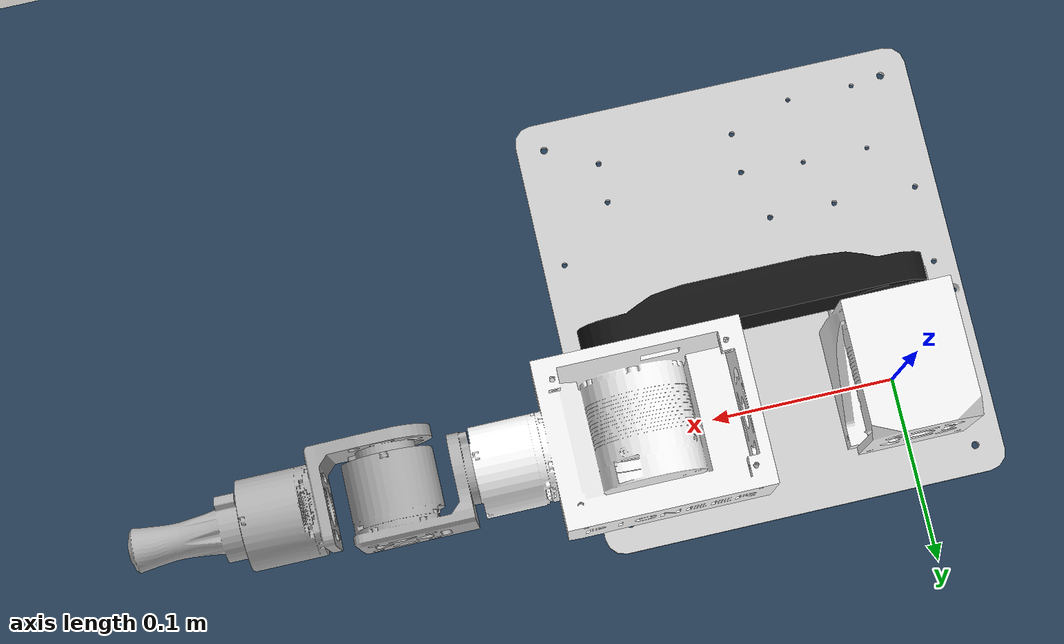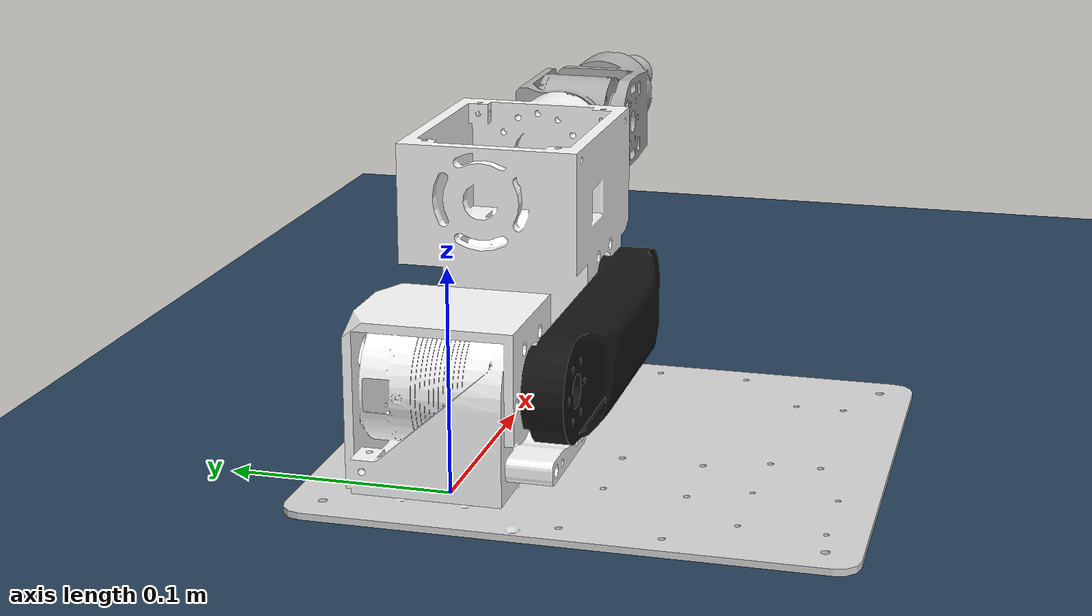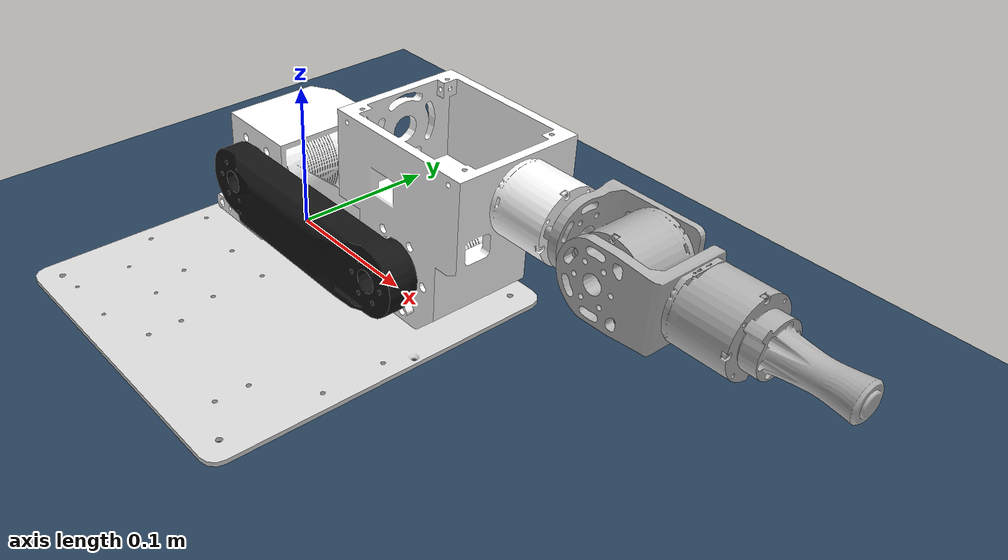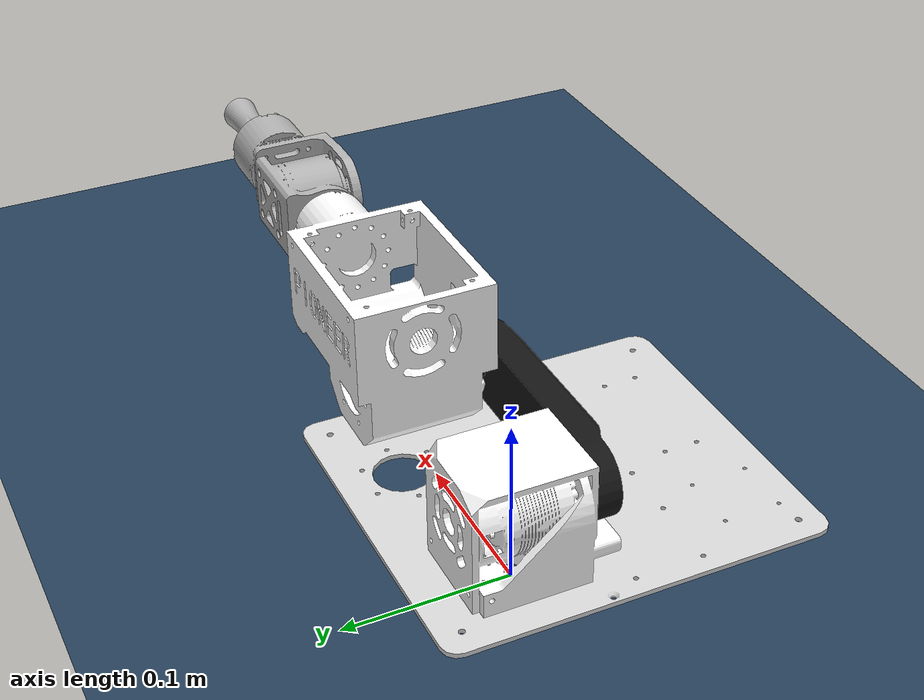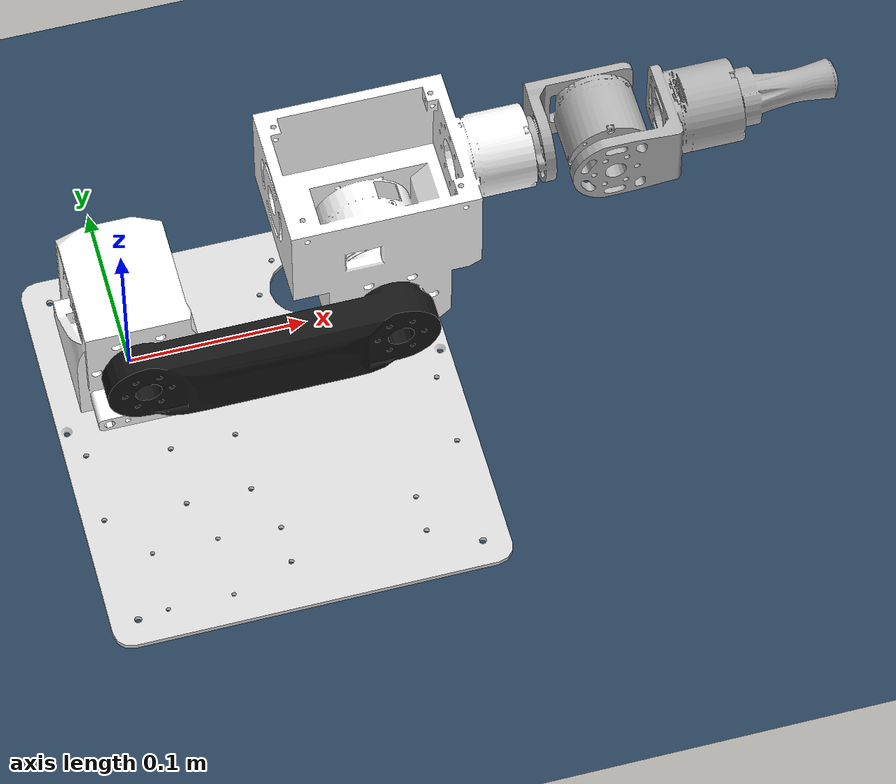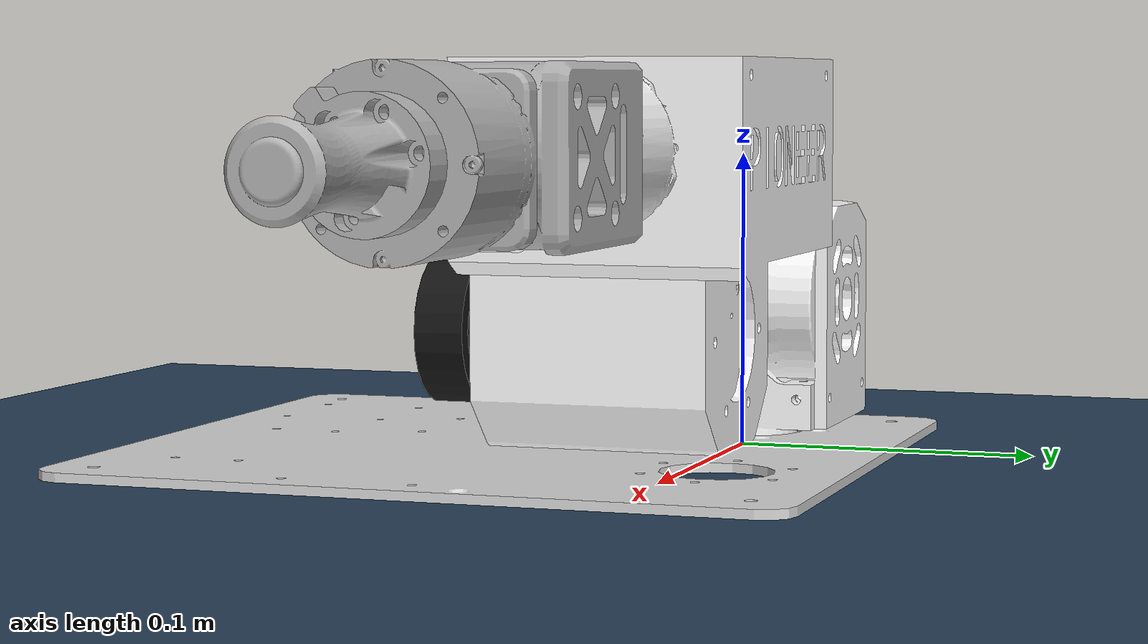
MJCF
<mujoco model="Caster3 scene">
  <include file="caster3.xml"/>

  <statistic center="0.15 0 0.3" extent="0.8"/>

  <visual>
    <headlight diffuse="0.6 0.6 0.6" ambient="0.3 0.3 0.3" specular="0 0 0"/>
    <rgba haze="0.15 0.25 0.35 1"/>
    <global azimuth="120" elevation="-20"/>
  </visual>

  <asset>
    <texture type="skybox" builtin="gradient" rgb1="0.3 0.5 0.7" rgb2="0 0 0" width="512" height="3072"/>
    <texture type="2d" name="groundplane" builtin="checker" mark="edge" rgb1="0.2 0.3 0.4" rgb2="0.1 0.2 0.3"
      markrgb="0.8 0.8 0.8" width="300" height="300"/>
    <material name="groundplane" texture="groundplane" texuniform="true" texrepeat="5 5" reflectance="0.2"/>
  </asset>

  <worldbody>
    <light pos="0 0 1.5" dir="0 0 -1" directional="true"/>
    <geom name="floor" size="0 0 0.05" type="plane" material="groundplane"/>
  </worldbody>
</mujoco>

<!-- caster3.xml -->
<mujoco model="caster3">
  <compiler angle="radian" autolimits="true"/>
  <option integrator="implicitfast" timestep="0.001"/>
  <default>
    <default class="caster3">
      <material specular="0.5" shininess="0.25"/>
      <joint armature="0.1" damping="1" axis="0 0 1"/>
      <default class="visual">
        <geom type="mesh" contype="0" conaffinity="0" group="2"/>
      </default>
      <default class="collision">
        <geom type="mesh" group="3"/>
      </default>
    </default>
  </default>
  <asset>
    <!-- 材质定义 -->
    <material class="caster3" name="gray_light" rgba="0.84706 0.84706 0.84706 1"/>
    <material class="caster3" name="white" rgba="1 1 1 1"/>
    <material class="caster3" name="dark_gray" rgba="0.082353 0.082353 0.082353 1"/>
    <material class="caster3" name="mid_gray" rgba="0.69804 0.69804 0.69804 1"/>
    <!-- Mesh 文件 -->
    <mesh name="base_link" content_type="model/stl" file="../asserts/base_link.STL"/>
    <mesh name="Link1" content_type="model/stl" file="../asserts/Link1.STL"/>
    <mesh name="Link2" content_type="model/stl" file="../asserts/Link2.STL"/>
    <mesh name="Link3" content_type="model/stl" file="../asserts/Link3.STL"/>
    <mesh name="Link4" content_type="model/stl" file="../asserts/Link4.STL"/>
    <mesh name="Link5" content_type="model/stl" file="../asserts/Link5.STL"/>
    <mesh name="Link6" content_type="model/stl" file="../asserts/Link6.STL"/>
  </asset>
  <worldbody>
    <light name="top" pos="0 0 2" mode="trackcom"/>
    <body name="base_link" childclass="caster3">
      <!-- 基座固定在世界坐标系 -->
      <inertial pos="0 0 0" mass="0" diaginertia="0 0 0"/>
      <geom mesh="base_link" material="gray_light" class="visual"/>
      <geom mesh="base_link" class="collision"/>
      <body name="Link1">
        <inertial pos="3.1394e-05 -0.0055261 0.040465" quat="0.638155 0.303722 -0.305623 0.638048" mass="0.17456" diaginertia="0.000147836 0.00011544 0.000101674"/>
        <joint name="J1" range="0 3.14"/>
        <geom mesh="Link1" material="white" class="visual"/>
        <geom mesh="Link1" class="collision"/>
        <body name="Link2" pos="0 0 0.051" quat="0.707105 0.707108 0 0">
          <inertial pos="0.070068 -7.2492e-09 0.047967" quat="0 0.70712 0 0.707094" mass="0.15" diaginertia="0.00039526 0.00037191 3.5154e-05"/>
          <joint name="J2" range="0 3.14"/>
          <geom mesh="Link2" material="dark_gray" class="visual"/>
          <geom mesh="Link2" class="collision"/>
          <body name="Link3" pos="0.14 0 0">
            <inertial pos="0.0079236 0.04229 -0.0064445" quat="0.302999 0.653186 0.281327 0.634346" mass="0.706" diaginertia="0.000709906 0.000649093 0.000578841"/>
            <joint name="J3" range="0 3.14"/>
            <geom mesh="Link3" material="white" class="visual"/>
            <geom mesh="Link3" class="collision"/>
            <body name="Link4" pos="0 0.055 -0.0115" quat="0.499998 -0.5 0.500002 -0.5">
              <inertial pos="-1.1011e-05 0.0039186 0.12299" quat="0.698448 -0.103868 0.104701 0.7003" mass="0.195" diaginertia="2.99112e-05 2.4348e-05 1.87588e-05"/>
              <joint name="J4" range="-2.1 3.14"/>
              <geom mesh="Link4" material="mid_gray" class="visual"/>
              <geom mesh="Link4" class="collision"/>
              <body name="Link5" pos="0 0 0.1299" quat="0.707105 0.707108 0 0">
                <inertial pos="8.6583e-05 0.044187 0.0060608" quat="0.657632 0.254897 -0.258483 0.660101" mass="0.207" diaginertia="2.72575e-05 2.4466e-05 2.05615e-05"/>
                <joint name="J5" range="-1.57 1.57"/>
                <geom mesh="Link5" material="mid_gray" class="visual"/>
                <geom mesh="Link5" class="collision"/>
                <body name="Link6" quat="0.707105 -0.707108 0 0">
                  <inertial pos="-0.0002507 -0.00023025 0.099678" quat="0.402513 0.00376972 0.0085644 0.915367" mass="0.017338" diaginertia="6.095e-06 5.96074e-06 1.83696e-06"/>
                  <joint name="J6" range="-1.57 3.14"/>
                  <geom mesh="Link6" material="mid_gray" class="visual"/>
                  <geom mesh="Link6" class="collision"/>
                </body>
              </body>
            </body>
          </body>
        </body>
      </body>
    </body>
  </worldbody>
  <actuator>
    <motor name="act_J1" joint="J1" ctrlrange="-10 10" ctrllimited="true"/>
    <motor name="act_J2" joint="J2" ctrlrange="-10 10" ctrllimited="true"/>
    <motor name="act_J3" joint="J3" ctrlrange="-10 10" ctrllimited="true"/>
    <motor name="act_J4" joint="J4" ctrlrange="-0.8 0.8" ctrllimited="true"/>
    <motor name="act_J5" joint="J5" ctrlrange="-0.8 0.8" ctrllimited="true"/>
    <motor name="act_J6" joint="J6" ctrlrange="-0.8 0.8" ctrllimited="true"/>
  </actuator>
  <keyframe>
    <key name="home" qpos="0 0 0 0 0 0" ctrl="0 0 0 0 0 0"/>
  </keyframe>
  <contact>
    <exclude body1="base_link" body2="Link1"/>
    <exclude body1="Link1" body2="Link2"/>
    <exclude body1="Link2" body2="Link3"/>
    <exclude body1="Link3" body2="Link4"/>
    <exclude body1="Link4" body2="Link5"/>
    <exclude body1="Link5" body2="Link6"/>
  </contact>
</mujoco>
